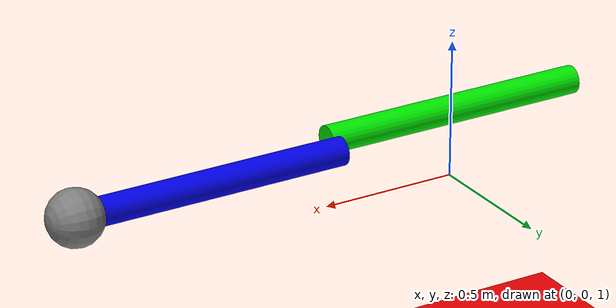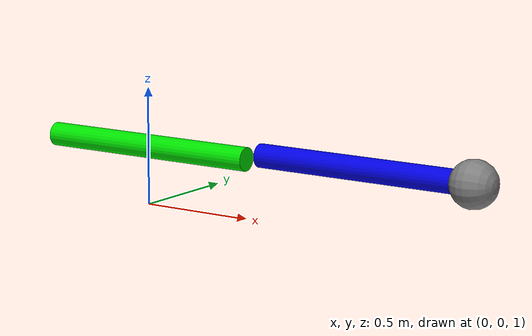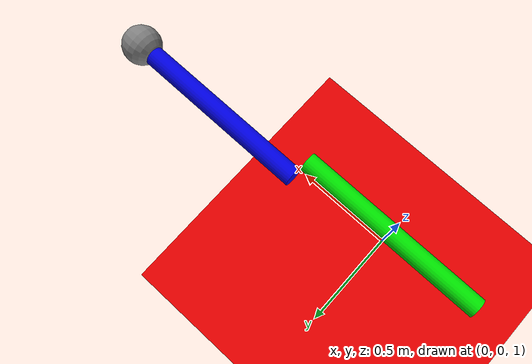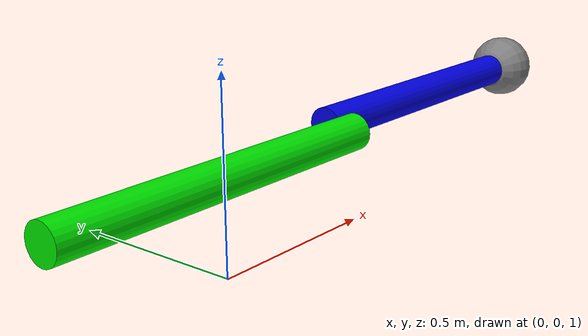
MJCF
<mujoco>
	<option timestep="0.001" integrator="RK4" gravity="0 0 0" >
		<flag sensornoise="enable" energy="enable" contact="disable"/>
	</option>
	<worldbody>
        <light diffuse=".5 .5 .5" pos="0 0 3" dir="0 0 -1"/>
		<geom type="plane" size="1 1 0.1" rgba=".9 0 0 1"/>
		<body pos="0 0 1.25" euler="0 90 0">
			<joint name="pin" type="hinge" axis = "0 -1 0" pos="0 0 -0.5"/>
			<geom type="cylinder" size="0.05 0.5" rgba="0 .9 0 1" mass="1"/>
			<body pos="0 0.1 1" euler="0 0 0">
				<joint name="pin2" type="hinge" axis = "0 -1 0" pos="0 0 -0.5"/>
				<geom type="cylinder" size="0.05 0.5" rgba="0 0 0.9 1" mass="1"/>
				<site name="endeff" pos="0 0 0.5" size="0.1"/>
			</body>
		</body>
	</worldbody>
	<actuator>
		<position name="pservo1" joint="pin" kp="100" />
		<velocity name="vservo1" joint="pin" kv="10" />
		<position name="pservo2" joint="pin2" kp="100" />
		<velocity name="vservo2" joint="pin2" kv="10" />
	</actuator>
	<sensor>
		<framepos objtype="site" objname="endeff"/>
		<framelinvel objtype="site" objname="endeff"/>
	</sensor>
</mujoco>
